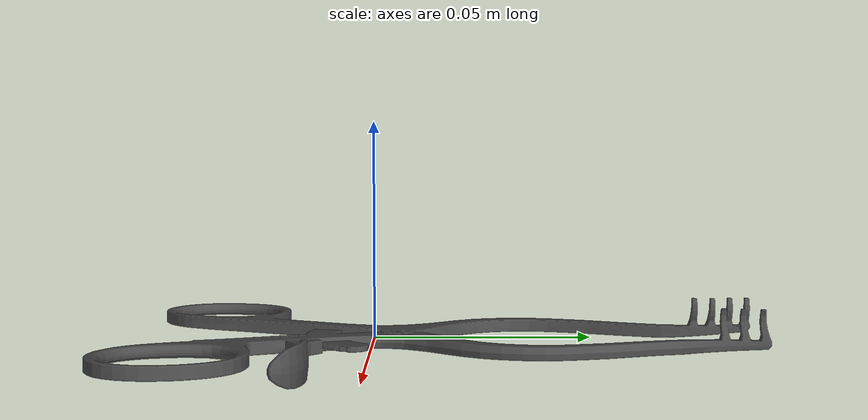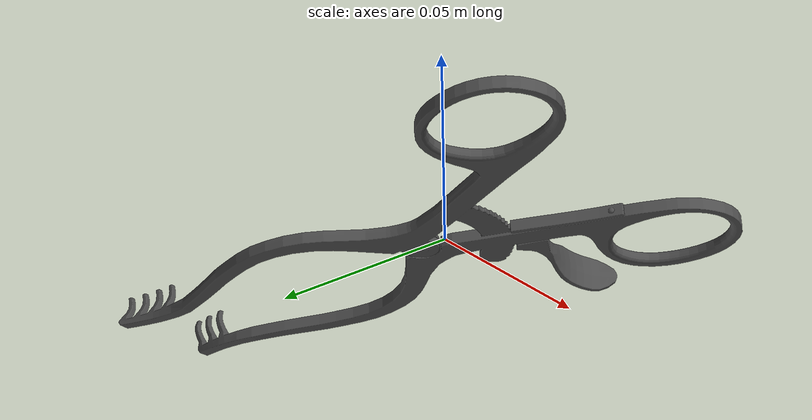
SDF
<?xml version="1.0"?>
<sdf version="1.9">
  <model name="retractor">
    <static>false</static>
    <self_collide>false</self_collide>

    <link name="link">
      <inertial>
        <mass>0.05152</mass>
        <inertia>
          <ixx>0.0000976230</ixx>
          <ixy>0.0000028314</ixy>
          <ixz>0.0000000000</ixz>
          <iyy>0.0000276006</iyy>
          <iyz>0.0000000000</iyz>
          <izz>0.0001217891</izz>
        </inertia>
      </inertial>

      <collision name="collision">
        <geometry>
          <mesh>
            <uri>model://thesis/DAE/Retractor/RetractorCollision20.dae</uri>
            <scale>1 1 1</scale>
          </mesh>
        </geometry>
        <surface>
          <contact>
            <ode>
              <max_vel>0.01</max_vel>
            </ode>
          </contact>
        </surface>
      </collision>

      <visual name="visual">
        <geometry>
          <mesh>
            <uri>model://thesis/DAE/Retractor/Retractor.dae</uri>
          </mesh>
        </geometry>
      </visual>
    </link>
  </model>
</sdf>
